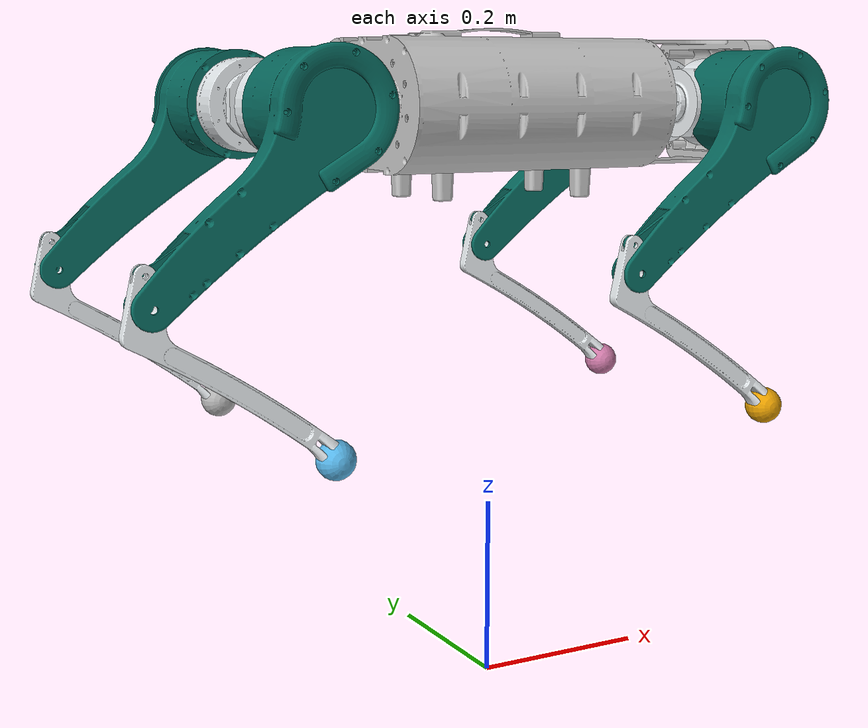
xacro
<?xml version="1.0" encoding="utf-8"?>
<robot name="ask_3" xmlns:xacro="http://www.ros.org/wiki/xacro">
  <xacro:include filename="$(find ask_3_description)/urdf/ask_3.gazebo" />

  <!-- Used for fixing robot to Gazebo -->
  <link name="world"/>

  <joint name="fixed" type="fixed">
    <parent link="world"/>
    <child link="base"/>
    <origin rpy="0 0 0" xyz="0 0 0.65"/>
    <!--origin rpy="0 0 0" xyz="0 0 0.498093197403"/-->
  </joint>

  <link
    name="base">
    <inertial>
      <origin
        xyz="0.014593 0.00028184 -0.00016073"
        rpy="0 0 0" />
      <mass
        value="9.6967" />
      <inertia
        ixx="0.027851"
        ixy="0.00062733"
        ixz="-7.4684E-05"
        iyy="0.0296"
        iyz="-0.00011078"
        izz="0.048661" />
    </inertial>
    <visual>
      <origin
        xyz="0 0 0"
        rpy="0 0 0" />
      <geometry>
        <mesh
          filename="package://ask_3_description/meshes/base.STL" />
      </geometry>
      <material
        name="">
        <color
          rgba="0.75294 0.75294 0.75294 1" />
      </material>
    </visual>
    <collision>
      <origin
        xyz="0 0 0"
        rpy="0 0 0" />
      <geometry>
        <mesh
          filename="package://ask_3_description/meshes/base.STL" />
      </geometry>
    </collision>
  </link>
  <link
    name="LF_Link1">
    <inertial>
      <origin
        xyz="0.015742 2.0008E-06 0.05652"
        rpy="0 0 0" />
      <mass
        value="0.84408" />
      <inertia
        ixx="0.0011915"
        ixy="-2.9889E-08"
        ixz="1.8508E-06"
        iyy="0.00074578"
        iyz="5.548E-08"
        izz="0.00064082" />
    </inertial>
    <visual>
      <origin
        xyz="0 0 0"
        rpy="0 0 0" />
      <geometry>
        <mesh
          filename="package://ask_3_description/meshes/LF_Link1.STL" />
      </geometry>
      <material
        name="">
        <color
          rgba="0.89804 0.91765 0.92941 1" />
      </material>
    </visual>
    <collision>
      <origin
        xyz="0 0 0"
        rpy="0 0 0" />
      <geometry>
        <mesh
          filename="package://ask_3_description/meshes/LF_Link1.STL" />
      </geometry>
    </collision>
  </link>
  <joint
    name="LF_HAA"
    type="revolute">
    <origin
      xyz="0.1965 0.072 0"
      rpy="-1.5708 0 -1.5708" />
    <parent
      link="base" />
    <child
      link="LF_Link1" />
    <axis
      xyz="0 0 1" />
    <limit
      lower="-3.14"
      upper="3.14"
      effort="50"
      velocity="1000" />
  </joint>
  <link
    name="LF_Link2">
    <inertial>
      <origin
        xyz="-0.016452 0.016693 0.067293"
        rpy="0 0 0" />
      <mass
        value="1.8166" />
      <inertia
        ixx="0.003278"
        ixy="0.001787"
        ixz="-2.1595E-06"
        iyy="0.0035781"
        iyz="1.8742E-06"
        izz="0.0065662" />
    </inertial>
    <visual>
      <origin
        xyz="0 0 0"
        rpy="0 0 0" />
      <geometry>
        <mesh
          filename="package://ask_3_description/meshes/LF_Link2.STL" />
      </geometry>
      <material
        name="">
        <color
          rgba="0.027451 0.40784 0.36471 1" />
      </material>
    </visual>
    <collision>
      <origin
        xyz="0 0 0"
        rpy="0 0 0" />
      <geometry>
        <mesh
          filename="package://ask_3_description/meshes/LF_Link2.STL" />
      </geometry>
    </collision>
  </link>
  <joint
    name="LF_HFE"
    type="revolute">
    <origin
      xyz="0.004 0 0.066"
      rpy="0.0 -1.5708 0" />
    <parent
      link="LF_Link1" />
    <child
      link="LF_Link2" />
    <axis
      xyz="0 0 1" />
    <limit
      lower="-3.14"
      upper="3.14"
      effort="50"
      velocity="1000" />
  </joint>
  <link
    name="LF_Link3">
    <inertial>
      <origin
        xyz="0.070778 0.071405 -0.0025021"
        rpy="0 0 0" />
      <mass
        value="0.20609" />
      <inertia
        ixx="0.00069042"
        ixy="-0.00080696"
        ixz="1.2982E-08"
        iyy="0.001043"
        iyz="8.2699E-09"
        izz="0.0017245" />
    </inertial>
    <visual>
      <origin
        xyz="0 0 0"
        rpy="0 0 0" />
      <geometry>
        <mesh
          filename="package://ask_3_description/meshes/LF_Link3.STL" />
      </geometry>
      <material
        name="">
        <color
          rgba="0.89804 0.91765 0.92941 1" />
      </material>
    </visual>
    <collision>
      <origin
        xyz="0 0 0"
        rpy="0 0 0" />
      <geometry>
        <mesh
          filename="package://ask_3_description/meshes/LF_Link3.STL" />
      </geometry>
    </collision>
  </link>
  <joint
    name="LF_KFE"
    type="revolute">
    <origin
      xyz="-0.18062 0.17285 0.0947"
      rpy="0 0 0" />
    <parent
      link="LF_Link2" />
    <child
      link="LF_Link3" />
    <axis
      xyz="0 0 1" />
    <limit
      lower="-3.14"
      upper="3.14"
      effort="50"
      velocity="1000" />
  </joint>
  <link
    name="LH_Link1">
    <inertial>
      <origin
        xyz="0.015742 -2.0009E-06 -0.05652"
        rpy="0 0 0" />
      <mass
        value="0.84408" />
      <inertia
        ixx="0.0011915"
        ixy="2.989E-08"
        ixz="-1.8508E-06"
        iyy="0.00074578"
        iyz="5.548E-08"
        izz="0.00064082" />
    </inertial>
    <visual>
      <origin
        xyz="0 0 0"
        rpy="0 0 0" />
      <geometry>
        <mesh
          filename="package://ask_3_description/meshes/LH_Link1.STL" />
      </geometry>
      <material
        name="">
        <color
          rgba="0.89804 0.91765 0.92941 1" />
      </material>
    </visual>
    <collision>
      <origin
        xyz="0 0 0"
        rpy="0 0 0" />
      <geometry>
        <mesh
          filename="package://ask_3_description/meshes/LH_Link1.STL" />
      </geometry>
    </collision>
  </link>
  <joint
    name="LH_HAA"
    type="revolute">
    <origin
      xyz="-0.1965 0.072 0"
      rpy="-1.5708 0 -1.5708" />
    <parent
      link="base" />
    <child
      link="LH_Link1" />
    <axis
      xyz="0 0 1" />
    <limit
      lower="-3.14"
      upper="3.14"
      effort="50"
      velocity="1000" />
  </joint>
  <link
    name="LH_Link2">
    <inertial>
      <origin
        xyz="-0.016441 0.016704 0.067293"
        rpy="0 0 0" />
      <mass
        value="1.8166" />
      <inertia
        ixx="0.0032804"
        ixy="0.0017872"
        ixz="-2.1582E-06"
        iyy="0.0035757"
        iyz="1.8756E-06"
        izz="0.0065662" />
    </inertial>
    <visual>
      <origin
        xyz="0 0 0"
        rpy="0 0 0" />
      <geometry>
        <mesh
          filename="package://ask_3_description/meshes/LH_Link2.STL" />
      </geometry>
      <material
        name="">
        <color
          rgba="0.027451 0.40784 0.36471 1" />
      </material>
    </visual>
    <collision>
      <origin
        xyz="0 0 0"
        rpy="0 0 0" />
      <geometry>
        <mesh
          filename="package://ask_3_description/meshes/LH_Link2.STL" />
      </geometry>
    </collision>
  </link>
  <joint
    name="LH_HFE"
    type="revolute">
    <origin
      xyz="0.004 0 -0.066"
      rpy="0.0 -1.5708 0" />
    <parent
      link="LH_Link1" />
    <child
      link="LH_Link2" />
    <axis
      xyz="0 0 1" />
    <limit
      lower="-3.14"
      upper="3.14"
      effort="50"
      velocity="1000" />
  </joint>
  <link
    name="LH_Link3">
    <inertial>
      <origin
        xyz="0.070825 0.071358 -0.0025021"
        rpy="0 0 0" />
      <mass
        value="0.20609" />
      <inertia
        ixx="0.00068935"
        ixy="-0.00080672"
        ixz="1.2987E-08"
        iyy="0.001044"
        iyz="8.261E-09"
        izz="0.0017245" />
    </inertial>
    <visual>
      <origin
        xyz="0 0 0"
        rpy="0 0 0" />
      <geometry>
        <mesh
          filename="package://ask_3_description/meshes/LH_Link3.STL" />
      </geometry>
      <material
        name="">
        <color
          rgba="0.89804 0.91765 0.92941 1" />
      </material>
    </visual>
    <collision>
      <origin
        xyz="0 0 0"
        rpy="0 0 0" />
      <geometry>
        <mesh
          filename="package://ask_3_description/meshes/LH_Link3.STL" />
      </geometry>
    </collision>
  </link>
  <joint
    name="LH_KFE"
    type="revolute">
    <origin
      xyz="-0.18051 0.17297 0.0947"
      rpy="0 0 0" />
    <parent
      link="LH_Link2" />
    <child
      link="LH_Link3" />
    <axis
      xyz="0 0 1" />
    <limit
      lower="-3.14"
      upper="3.14"
      effort="50"
      velocity="1000" />
  </joint>
  <link
    name="RF_Link1">
    <inertial>
      <origin
        xyz="-0.015742 -2.0009E-06 0.05652"
        rpy="0 0 0" />
      <mass
        value="0.84408" />
      <inertia
        ixx="0.0011915"
        ixy="-2.989E-08"
        ixz="-1.8508E-06"
        iyy="0.00074578"
        iyz="-5.548E-08"
        izz="0.00064082" />
    </inertial>
    <visual>
      <origin
        xyz="0 0 0"
        rpy="0 0 0" />
      <geometry>
        <mesh
          filename="package://ask_3_description/meshes/RF_Link1.STL" />
      </geometry>
      <material
        name="">
        <color
          rgba="0.89804 0.91765 0.92941 1" />
      </material>
    </visual>
    <collision>
      <origin
        xyz="0 0 0"
        rpy="0 0 0" />
      <geometry>
        <mesh
          filename="package://ask_3_description/meshes/RF_Link1.STL" />
      </geometry>
    </collision>
  </link>
  <joint
    name="RF_HAA"
    type="revolute">
    <origin
      xyz="0.1965 -0.072 0"
      rpy="-1.5708 0 -1.5708" />
    <parent
      link="base" />
    <child
      link="RF_Link1" />
    <axis
      xyz="0 0 1" />
    <limit
      lower="-3.14"
      upper="3.14"
      effort="50"
      velocity="1000" />
  </joint>
  <link
    name="RF_Link2">
    <inertial>
      <origin
        xyz="-0.01645 0.016695 -0.067293"
        rpy="0 0 0" />
      <mass
        value="1.8166" />
      <inertia
        ixx="0.0032782"
        ixy="0.001787"
        ixz="2.082E-06"
        iyy="0.0035779"
        iyz="-1.9593E-06"
        izz="0.0065662" />
    </inertial>
    <visual>
      <origin
        xyz="0 0 0"
        rpy="0 0 0" />
      <geometry>
        <mesh
          filename="package://ask_3_description/meshes/RF_Link2.STL" />
      </geometry>
      <material
        name="">
        <color
          rgba="0.027451 0.40784 0.36471 1" />
      </material>
    </visual>
    <collision>
      <origin
        xyz="0 0 0"
        rpy="0 0 0" />
      <geometry>
        <mesh
          filename="package://ask_3_description/meshes/RF_Link2.STL" />
      </geometry>
    </collision>
  </link>
  <joint
    name="RF_HFE"
    type="revolute">
    <origin
      xyz="-0.004 0 0.066"
      rpy="0.0 -1.5708 0" />
    <parent
      link="RF_Link1" />
    <child
      link="RF_Link2" />
    <axis
      xyz="0 0 1" />
    <limit
      lower="-3.14"
      upper="3.14"
      effort="50"
      velocity="1000" />
  </joint>
  <link
    name="RF_Link3">
    <inertial>
      <origin
        xyz="0.070778 0.071405 -0.0025021"
        rpy="0 0 0" />
      <mass
        value="0.20609" />
      <inertia
        ixx="0.00069042"
        ixy="-0.00080696"
        ixz="1.2982E-08"
        iyy="0.001043"
        iyz="8.2699E-09"
        izz="0.0017245" />
    </inertial>
    <visual>
      <origin
        xyz="0 0 0"
        rpy="0 0 0" />
      <geometry>
        <mesh
          filename="package://ask_3_description/meshes/RF_Link3.STL" />
      </geometry>
      <material
        name="">
        <color
          rgba="0.89804 0.91765 0.92941 1" />
      </material>
    </visual>
    <collision>
      <origin
        xyz="0 0 0"
        rpy="0 0 0" />
      <geometry>
        <mesh
          filename="package://ask_3_description/meshes/RF_Link3.STL" />
      </geometry>
    </collision>
  </link>
  <joint
    name="RF_KFE"
    type="revolute">
    <origin
      xyz="-0.18062 0.17285 -0.0897"
      rpy="0 0 0" />
    <parent
      link="RF_Link2" />
    <child
      link="RF_Link3" />
    <axis
      xyz="0 0 1" />
    <limit
      lower="-3.14"
      upper="3.14"
      effort="50"
      velocity="1000" />
  </joint>
  <link
    name="RH_Link1">
    <inertial>
      <origin
        xyz="-0.015742 2.0009E-06 -0.05652"
        rpy="0 0 0" />
      <mass
        value="0.84408" />
      <inertia
        ixx="0.0011915"
        ixy="2.989E-08"
        ixz="1.8508E-06"
        iyy="0.00074578"
        iyz="-5.548E-08"
        izz="0.00064082" />
    </inertial>
    <visual>
      <origin
        xyz="0 0 0"
        rpy="0 0 0" />
      <geometry>
        <mesh
          filename="package://ask_3_description/meshes/RH_Link1.STL" />
      </geometry>
      <material
        name="">
        <color
          rgba="0.89804 0.91765 0.92941 1" />
      </material>
    </visual>
    <collision>
      <origin
        xyz="0 0 0"
        rpy="0 0 0" />
      <geometry>
        <mesh
          filename="package://ask_3_description/meshes/RH_Link1.STL" />
      </geometry>
    </collision>
  </link>
  <joint
    name="RH_HAA"
    type="revolute">
    <origin
      xyz="-0.1965 -0.072 0"
      rpy="-1.5708 0 -1.5708" />
    <parent
      link="base" />
    <child
      link="RH_Link1" />
    <axis
      xyz="0 0 1" />
    <limit
      lower="-3.14"
      upper="3.14"
      effort="50"
      velocity="1000" />
  </joint>
  <link
    name="RH_Link2">
    <inertial>
      <origin
        xyz="-0.016439 0.016706 -0.067293"
        rpy="0 0 0" />
      <mass
        value="1.8166" />
      <inertia
        ixx="0.0032805"
        ixy="0.0017872"
        ixz="2.0807E-06"
        iyy="0.0035756"
        iyz="-1.9607E-06"
        izz="0.0065662" />
    </inertial>
    <visual>
      <origin
        xyz="0 0 0"
        rpy="0 0 0" />
      <geometry>
        <mesh
          filename="package://ask_3_description/meshes/RH_Link2.STL" />
      </geometry>
      <material
        name="">
        <color
          rgba="0.027451 0.40784 0.36471 1" />
      </material>
    </visual>
    <collision>
      <origin
        xyz="0 0 0"
        rpy="0 0 0" />
      <geometry>
        <mesh
          filename="package://ask_3_description/meshes/RH_Link2.STL" />
      </geometry>
    </collision>
  </link>
  <joint
    name="RH_HFE"
    type="revolute">
    <origin
      xyz="-0.004 0 -0.066"
      rpy="0.0 -1.5708 0" />
    <parent
      link="RH_Link1" />
    <child
      link="RH_Link2" />
    <axis
      xyz="0 0 1" />
    <limit
      lower="-3.14"
      upper="3.14"
      effort="50"
      velocity="1000" />
  </joint>
  <link
    name="RH_Link3">
    <inertial>
      <origin
        xyz="0.070825 0.071358 -0.0025021"
        rpy="0 0 0" />
      <mass
        value="0.20609" />
      <inertia
        ixx="0.00068935"
        ixy="-0.00080672"
        ixz="1.2987E-08"
        iyy="0.001044"
        iyz="8.261E-09"
        izz="0.0017245" />
    </inertial>
    <visual>
      <origin
        xyz="0 0 0"
        rpy="0 0 0" />
      <geometry>
        <mesh
          filename="package://ask_3_description/meshes/RH_Link3.STL" />
      </geometry>
      <material
        name="">
        <color
          rgba="0.89804 0.91765 0.92941 1" />
      </material>
    </visual>
    <collision>
      <origin
        xyz="0 0 0"
        rpy="0 0 0" />
      <geometry>
        <mesh
          filename="package://ask_3_description/meshes/RH_Link3.STL" />
      </geometry>
    </collision>
  </link>
  <joint
    name="RH_KFE"
    type="revolute">
    <origin
      xyz="-0.18051 0.17297 -0.0897"
      rpy="0 0 0" />
    <parent
      link="RH_Link2" />
    <child
      link="RH_Link3" />
    <axis
      xyz="0 0 1" />
    <limit
      lower="-3.14"
      upper="3.14"
      effort="50"
      velocity="1000" />
  </joint>

  <link name="LF_foot">
    <visual>
     <origin xyz="0 0 0"/>
      <geometry>
        <sphere radius="0.02"/>
      </geometry>
    </visual>
    <collision>
      <origin rpy="0 0 0" xyz="0 0 0"/>
      <geometry>
        <sphere radius="0.02"/>
      </geometry>
    </collision>
  </link>
  <joint name="LF_ankle" type="fixed">
    <parent link="LF_Link3"/>
    <child link="LF_foot"/>
    <origin rpy="0 0 0" xyz="0.18 0.16 -0.002"/>
  </joint>

  <link name="LH_foot">
    <visual>
     <origin xyz="0 0 0"/>
      <geometry>
        <sphere radius="0.02"/>
      </geometry>
    </visual>
    <collision>
      <origin rpy="0 0 0" xyz="0 0 0"/>
      <geometry>
        <sphere radius="0.02"/>
      </geometry>
    </collision>
  </link>
  <joint name="LH_ankle" type="fixed">
    <parent link="LH_Link3"/>
    <child link="LH_foot"/>
    <origin rpy="0 0 0" xyz="0.18 0.16 -0.002"/>
  </joint>

  <link name="RF_foot">
    <visual>
     <origin xyz="0 0 0"/>
      <geometry>
        <sphere radius="0.02"/>
      </geometry>
    </visual>
    <collision>
      <origin rpy="0 0 0" xyz="0 0 0"/>
      <geometry>
        <sphere radius="0.02"/>
      </geometry>
    </collision>
  </link>
  <joint name="RF_ankle" type="fixed">
    <parent link="RF_Link3"/>
    <child link="RF_foot"/>
    <origin rpy="0 0 0" xyz="0.18 0.16 -0.002"/>
  </joint>

   <link name="RH_foot">
    <visual>
     <origin xyz="0 0 0"/>
      <geometry>
        <sphere radius="0.02"/>
      </geometry>
    </visual>
    <collision>
      <origin rpy="0 0 0" xyz="0 0 0"/>
      <geometry>
        <sphere radius="0.02"/>
      </geometry>
    </collision>
  </link>
  <joint name="RH_ankle" type="fixed">
    <parent link="RH_Link3"/>
    <child link="RH_foot"/>
    <origin rpy="0 0 0" xyz="0.18 0.16 -0.002"/>
  </joint>

  <!-- Gazebo customization -->
  <gazebo reference="RF_foot">
    <kp>1000000.0</kp>
    <kd>100.0</kd>
    <mu1>0.8</mu1>
    <mu2>0.8</mu2>
  </gazebo>

  <gazebo reference="LF_foot">
    <kp>1000000.0</kp>
    <kd>100.0</kd>
    <mu1>0.8</mu1>
    <mu2>0.8</mu2>
  </gazebo>

  <gazebo reference="RH_foot">
    <kp>1000000.0</kp>
    <kd>100.0</kd>
    <mu1>0.8</mu1>
    <mu2>0.8</mu2>
  </gazebo>

  <gazebo reference="LH_foot">
    <kp>1000000.0</kp>
    <kd>100.0</kd>
    <mu1>0.8</mu1>
    <mu2>0.8</mu2>
  </gazebo>
</robot>
